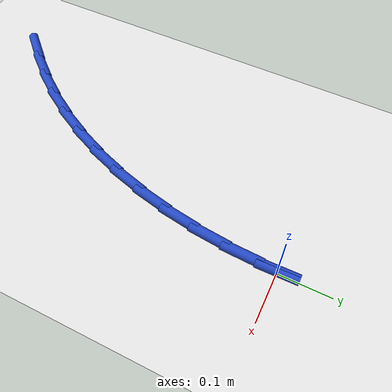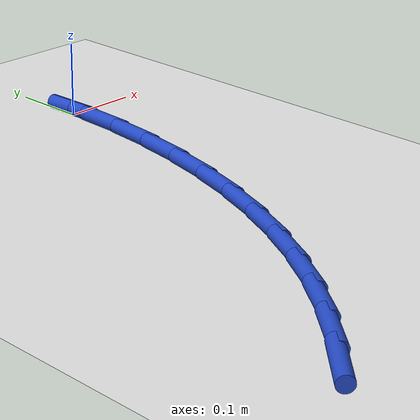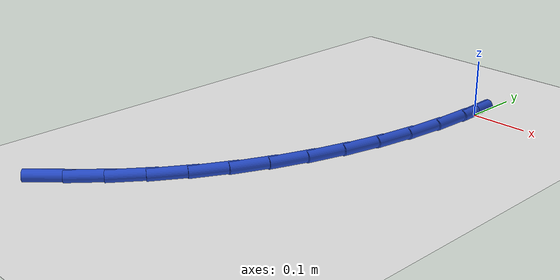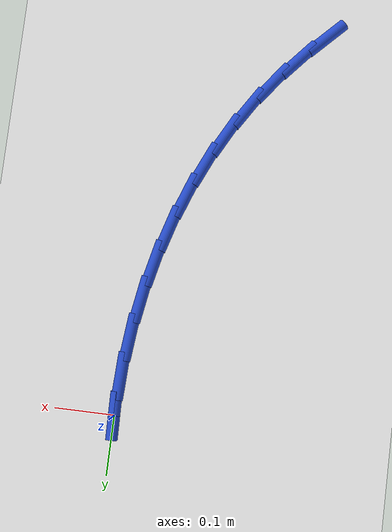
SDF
<sdf version="1.6">
 <world name="default">
  <model name="ground_plane">
   <static>1</static>
   <link name="link">
    <collision name="collision">
     <geometry><plane><normal>0 0 1</normal><size>100 100</size></plane></geometry>
     <surface><friction><ode><mu>100</mu><mu2>50</mu2></ode></friction></surface>
    </collision>
    <visual name="visual">
     <cast_shadows>0</cast_shadows>
     <geometry><plane><normal>0 0 1</normal><size>100 100</size></plane></geometry>
     <material>
      <script><uri>file://media/materials/scripts/gazebo.material</uri><name>Gazebo/WhiteGlow</name></script>
     </material>
    </visual>
   </link>
  </model>
  <model name="line">
   <link name="link_0">
    <pose>6.245004513516506e-17 1.3877787807814457e-17 0.01 0 1.57 -1.5508823669915588</pose>
    <collision name="collision">
     <geometry><cylinder><radius>0.01</radius><length>0.08</length></cylinder></geometry>
    </collision>
    <visual name="visual">
     <material>
      <script><name>Gazebo/Blue</name><uri>file://media/materials/scripts/gazebo.material</uri></script>
     </material>
     <geometry><cylinder><radius>0.01</radius><length>0.08</length></cylinder></geometry>
    </visual>
   </link>
   <link name="link_98">
    <pose>-0.2801828300266119 -0.6820998838609899 0.01 0 1.57 0.7927234916827621</pose>
    <collision name="collision">
     <geometry><cylinder><radius>0.01</radius><length>0.08</length></cylinder></geometry>
    </collision>
    <visual name="visual">
     <material>
      <script><name>Gazebo/Blue</name><uri>file://media/materials/scripts/gazebo.material</uri></script>
     </material>
     <geometry><cylinder><radius>0.01</radius><length>0.08</length></cylinder></geometry>
    </visual>
   </link>
   <link name="link_99">
    <pose>-0.23705239587416763 -0.638332886106543 0.01 0 1.57 0.8572519232859811</pose>
    <collision name="collision">
     <geometry><cylinder><radius>0.01</radius><length>0.08</length></cylinder></geometry>
    </collision>
    <visual name="visual">
     <material>
      <script><name>Gazebo/Blue</name><uri>file://media/materials/scripts/gazebo.material</uri></script>
     </material>
     <geometry><cylinder><radius>0.01</radius><length>0.08</length></cylinder></geometry>
    </visual>
   </link>
   <link name="link_100">
    <pose>-0.19707826561213448 -0.592157946038682 0.01 0 1.57 0.9291457914430951</pose>
    <collision name="collision">
     <geometry><cylinder><radius>0.01</radius><length>0.08</length></cylinder></geometry>
    </collision>
    <visual name="visual">
     <material>
      <script><name>Gazebo/Blue</name><uri>file://media/materials/scripts/gazebo.material</uri></script>
     </material>
     <geometry><cylinder><radius>0.01</radius><length>0.08</length></cylinder></geometry>
    </visual>
   </link>
   <link name="link_101">
    <pose>-0.16052470526979937 -0.5432314976713314 0.01 0 1.57 1.006021223014275</pose>
    <collision name="collision">
     <geometry><cylinder><radius>0.01</radius><length>0.08</length></cylinder></geometry>
    </collision>
    <visual name="visual">
     <material>
      <script><name>Gazebo/Blue</name><uri>file://media/materials/scripts/gazebo.material</uri></script>
     </material>
     <geometry><cylinder><radius>0.01</radius><length>0.08</length></cylinder></geometry>
    </visual>
   </link>
   <link name="link_102">
    <pose>-0.1276213407540752 -0.49130245224867036 0.01 0 1.57 1.081058422474198</pose>
    <collision name="collision">
     <geometry><cylinder><radius>0.01</radius><length>0.08</length></cylinder></geometry>
    </collision>
    <visual name="visual">
     <material>
      <script><name>Gazebo/Blue</name><uri>file://media/materials/scripts/gazebo.material</uri></script>
     </material>
     <geometry><cylinder><radius>0.01</radius><length>0.08</length></cylinder></geometry>
    </visual>
   </link>
   <link name="link_103">
    <pose>-0.09843614458437815 -0.43655128004278776 0.01 0 1.57 1.152657237806122</pose>
    <collision name="collision">
     <geometry><cylinder><radius>0.01</radius><length>0.08</length></cylinder></geometry>
    </collision>
    <visual name="visual">
     <material>
      <script><name>Gazebo/Blue</name><uri>file://media/materials/scripts/gazebo.material</uri></script>
     </material>
     <geometry><cylinder><radius>0.01</radius><length>0.08</length></cylinder></geometry>
    </visual>
   </link>
   <link name="link_104">
    <pose>-0.07298997178107851 -0.37928423886662943 0.01 0 1.57 1.2211579034049231</pose>
    <collision name="collision">
     <geometry><cylinder><radius>0.01</radius><length>0.08</length></cylinder></geometry>
    </collision>
    <visual name="visual">
     <material>
      <script><name>Gazebo/Blue</name><uri>file://media/materials/scripts/gazebo.material</uri></script>
     </material>
     <geometry><cylinder><radius>0.01</radius><length>0.08</length></cylinder></geometry>
    </visual>
   </link>
   <link name="link_105">
    <pose>-0.0513036718860406 -0.319807601158877 0.01 0 1.57 1.2869558441020141</pose>
    <collision name="collision">
     <geometry><cylinder><radius>0.01</radius><length>0.08</length></cylinder></geometry>
    </collision>
    <visual name="visual">
     <material>
      <script><name>Gazebo/Blue</name><uri>file://media/materials/scripts/gazebo.material</uri></script>
     </material>
     <geometry><cylinder><radius>0.01</radius><length>0.08</length></cylinder></geometry>
    </visual>
   </link>
   <link name="link_106">
    <pose>-0.03339809444112757 -0.2584276393582094 0.01 0 1.57 1.3504769281368743</pose>
    <collision name="collision">
     <geometry><cylinder><radius>0.01</radius><length>0.08</length></cylinder></geometry>
    </collision>
    <visual name="visual">
     <material>
      <script><name>Gazebo/Blue</name><uri>file://media/materials/scripts/gazebo.material</uri></script>
     </material>
     <geometry><cylinder><radius>0.01</radius><length>0.08</length></cylinder></geometry>
    </visual>
   </link>
   <link name="link_107">
    <pose>-0.019294088988203457 -0.19545062590330828 0.01 0 1.57 1.412160224882641</pose>
    <collision name="collision">
     <geometry><cylinder><radius>0.01</radius><length>0.08</length></cylinder></geometry>
    </collision>
    <visual name="visual">
     <material>
      <script><name>Gazebo/Blue</name><uri>file://media/materials/scripts/gazebo.material</uri></script>
     </material>
     <geometry><cylinder><radius>0.01</radius><length>0.08</length></cylinder></geometry>
    </visual>
   </link>
   <link name="link_108">
    <pose>-0.00901250506913162 -0.1311828332328523 0.01 0 1.57 1.4724466751313567</pose>
    <collision name="collision">
     <geometry><cylinder><radius>0.01</radius><length>0.08</length></cylinder></geometry>
    </collision>
    <visual name="visual">
     <material>
      <script><name>Gazebo/Blue</name><uri>file://media/materials/scripts/gazebo.material</uri></script>
     </material>
     <geometry><cylinder><radius>0.01</radius><length>0.08</length></cylinder></geometry>
    </visual>
   </link>
   <link name="link_109">
    <pose>-0.0025741922257759495 -0.0659305337855233 0.01 0 1.57 1.5317721416304013</pose>
    <collision name="collision">
     <geometry><cylinder><radius>0.01</radius><length>0.08</length></cylinder></geometry>
    </collision>
    <visual name="visual">
     <material>
      <script><name>Gazebo/Blue</name><uri>file://media/materials/scripts/gazebo.material</uri></script>
     </material>
     <geometry><cylinder><radius>0.01</radius><length>0.08</length></cylinder></geometry>
    </visual>
   </link>
   <link name="link_110">
    <pose>4.85722573273506e-17 0.0 0.01 0 1.57 -1.5510292397159957</pose>
    <collision name="collision">
     <geometry><cylinder><radius>0.01</radius><length>0.08</length></cylinder></geometry>
    </collision>
    <visual name="visual">
     <material>
      <script><name>Gazebo/Blue</name><uri>file://media/materials/scripts/gazebo.material</uri></script>
     </material>
     <geometry><cylinder><radius>0.01</radius><length>0.08</length></cylinder></geometry>
    </visual>
   </link>
  </model>
 </world>
</sdf>
